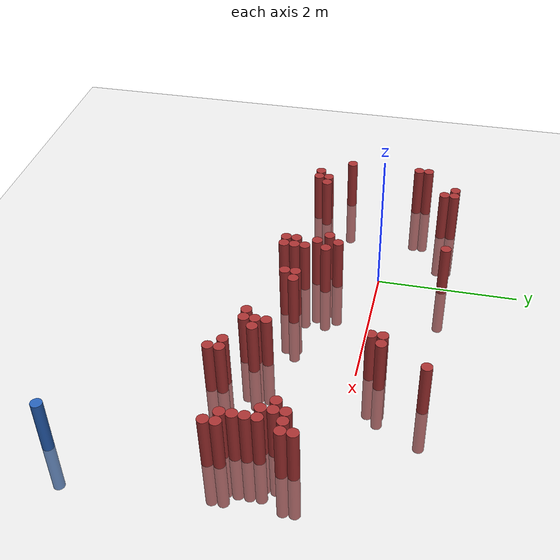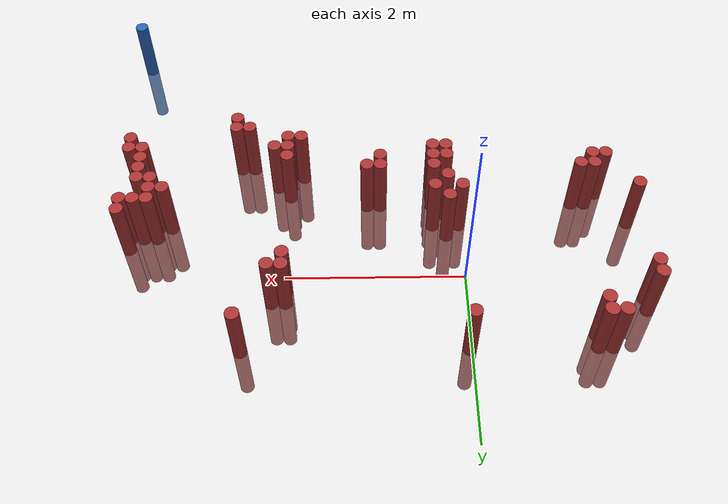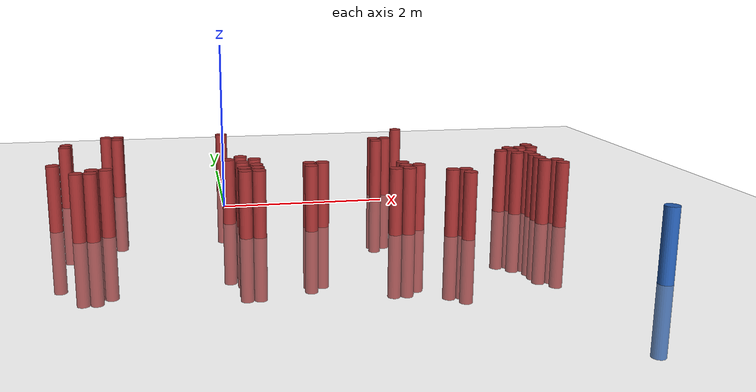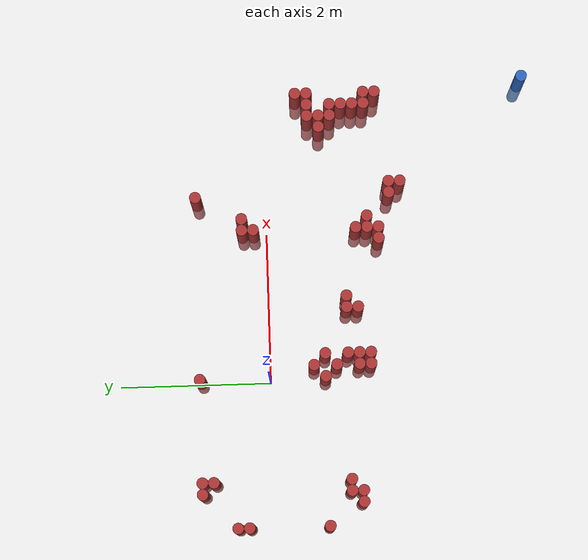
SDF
<sdf version="1.6">
 <world name="default">
  <model name="ground_plane">
   <static>1</static>
   <link name="link">
    <collision name="collision">
     <geometry><plane><normal>0 0 1</normal><size>100 100</size></plane></geometry>
     <surface><friction><ode><mu>100</mu><mu2>50</mu2></ode></friction></surface>
    </collision>
    <visual name="visual">
     <cast_shadows>0</cast_shadows>
     <geometry><plane><normal>0 0 1</normal><size>100 100</size></plane></geometry>
     <material>
      <script><uri>file://media/materials/scripts/gazebo.material</uri><name>Gazebo/Grey</name></script>
     </material>
    </visual>
   </link>
  </model>
  <model name="unit_cylinder_68">
   <static>1</static>
   <pose>3.925000 -3.425000 0.000000 0.000000 0.000000 0.000000</pose>
   <link name="link">
    <inertial>
     <mass>1</mass>
     <inertia><ixx>0.145833</ixx><ixy>0</ixy><ixz>0</ixz><iyy>0.145833</iyy><iyz>0</iyz><izz>0.125</izz></inertia>
    </inertial>
    <collision name="collision">
     <geometry><cylinder><radius>0.075000</radius><length>1.5</length></cylinder></geometry>
    </collision>
    <visual name="visual">
     <geometry><cylinder><radius>0.075000</radius><length>1.5</length></cylinder></geometry>
     <material>
      <ambient>0.152000 0.379000 0.720000 1</ambient>
      <diffuse>0.152000 0.379000 0.720000 1</diffuse>
     </material>
     <material>
      <script><name>Gazebo/Grey</name><uri>file://media/materials/scripts/gazebo.material</uri></script>
     </material>
    </visual>
   </link>
  </model>
  <model name="unit_cylinder_313">
   <static>1</static>
   <pose>-1.925000 -0.725000 0.000000 0.000000 0.000000 0.000000</pose>
   <link name="link">
    <inertial>
     <mass>1</mass>
     <inertia><ixx>0.145833</ixx><ixy>0</ixy><ixz>0</ixz><iyy>0.145833</iyy><iyz>0</iyz><izz>0.125</izz></inertia>
    </inertial>
    <collision name="collision">
     <geometry><cylinder><radius>0.075000</radius><length>1.5</length></cylinder></geometry>
    </collision>
    <visual name="visual">
     <geometry><cylinder><radius>0.075000</radius><length>1.5</length></cylinder></geometry>
     <material>
      <ambient>0.648000 0.192000 0.192000 1</ambient>
      <diffuse>0.648000 0.192000 0.192000 1</diffuse>
     </material>
     <material>
      <script><name>Gazebo/Grey</name><uri>file://media/materials/scripts/gazebo.material</uri></script>
     </material>
    </visual>
   </link>
  </model>
  <model name="unit_cylinder_314">
   <static>1</static>
   <pose>-1.925000 0.325000 0.000000 0.000000 0.000000 0.000000</pose>
   <link name="link">
    <inertial>
     <mass>1</mass>
     <inertia><ixx>0.145833</ixx><ixy>0</ixy><ixz>0</ixz><iyy>0.145833</iyy><iyz>0</iyz><izz>0.125</izz></inertia>
    </inertial>
    <collision name="collision">
     <geometry><cylinder><radius>0.075000</radius><length>1.5</length></cylinder></geometry>
    </collision>
    <visual name="visual">
     <geometry><cylinder><radius>0.075000</radius><length>1.5</length></cylinder></geometry>
     <material>
      <ambient>0.648000 0.192000 0.192000 1</ambient>
      <diffuse>0.648000 0.192000 0.192000 1</diffuse>
     </material>
     <material>
      <script><name>Gazebo/Grey</name><uri>file://media/materials/scripts/gazebo.material</uri></script>
     </material>
    </visual>
   </link>
  </model>
  <model name="unit_cylinder_315">
   <static>1</static>
   <pose>-1.925000 0.475000 0.000000 0.000000 0.000000 0.000000</pose>
   <link name="link">
    <inertial>
     <mass>1</mass>
     <inertia><ixx>0.145833</ixx><ixy>0</ixy><ixz>0</ixz><iyy>0.145833</iyy><iyz>0</iyz><izz>0.125</izz></inertia>
    </inertial>
    <collision name="collision">
     <geometry><cylinder><radius>0.075000</radius><length>1.5</length></cylinder></geometry>
    </collision>
    <visual name="visual">
     <geometry><cylinder><radius>0.075000</radius><length>1.5</length></cylinder></geometry>
     <material>
      <ambient>0.648000 0.192000 0.192000 1</ambient>
      <diffuse>0.648000 0.192000 0.192000 1</diffuse>
     </material>
     <material>
      <script><name>Gazebo/Grey</name><uri>file://media/materials/scripts/gazebo.material</uri></script>
     </material>
    </visual>
   </link>
  </model>
  <model name="unit_cylinder_320">
   <static>1</static>
   <pose>-1.625000 -1.175000 0.000000 0.000000 0.000000 0.000000</pose>
   <link name="link">
    <inertial>
     <mass>1</mass>
     <inertia><ixx>0.145833</ixx><ixy>0</ixy><ixz>0</ixz><iyy>0.145833</iyy><iyz>0</iyz><izz>0.125</izz></inertia>
    </inertial>
    <collision name="collision">
     <geometry><cylinder><radius>0.075000</radius><length>1.5</length></cylinder></geometry>
    </collision>
    <visual name="visual">
     <geometry><cylinder><radius>0.075000</radius><length>1.5</length></cylinder></geometry>
     <material>
      <ambient>0.648000 0.192000 0.192000 1</ambient>
      <diffuse>0.648000 0.192000 0.192000 1</diffuse>
     </material>
     <material>
      <script><name>Gazebo/Grey</name><uri>file://media/materials/scripts/gazebo.material</uri></script>
     </material>
    </visual>
   </link>
  </model>
  <model name="unit_cylinder_321">
   <static>1</static>
   <pose>-1.475000 -1.175000 0.000000 0.000000 0.000000 0.000000</pose>
   <link name="link">
    <inertial>
     <mass>1</mass>
     <inertia><ixx>0.145833</ixx><ixy>0</ixy><ixz>0</ixz><iyy>0.145833</iyy><iyz>0</iyz><izz>0.125</izz></inertia>
    </inertial>
    <collision name="collision">
     <geometry><cylinder><radius>0.075000</radius><length>1.5</length></cylinder></geometry>
    </collision>
    <visual name="visual">
     <geometry><cylinder><radius>0.075000</radius><length>1.5</length></cylinder></geometry>
     <material>
      <ambient>0.648000 0.192000 0.192000 1</ambient>
      <diffuse>0.648000 0.192000 0.192000 1</diffuse>
     </material>
     <material>
      <script><name>Gazebo/Grey</name><uri>file://media/materials/scripts/gazebo.material</uri></script>
     </material>
    </visual>
   </link>
  </model>
  <model name="unit_cylinder_322">
   <static>1</static>
   <pose>-1.475000 -1.025000 0.000000 0.000000 0.000000 0.000000</pose>
   <link name="link">
    <inertial>
     <mass>1</mass>
     <inertia><ixx>0.145833</ixx><ixy>0</ixy><ixz>0</ixz><iyy>0.145833</iyy><iyz>0</iyz><izz>0.125</izz></inertia>
    </inertial>
    <collision name="collision">
     <geometry><cylinder><radius>0.075000</radius><length>1.5</length></cylinder></geometry>
    </collision>
    <visual name="visual">
     <geometry><cylinder><radius>0.075000</radius><length>1.5</length></cylinder></geometry>
     <material>
      <ambient>0.648000 0.192000 0.192000 1</ambient>
      <diffuse>0.648000 0.192000 0.192000 1</diffuse>
     </material>
     <material>
      <script><name>Gazebo/Grey</name><uri>file://media/materials/scripts/gazebo.material</uri></script>
     </material>
    </visual>
   </link>
  </model>
  <model name="unit_cylinder_323">
   <static>1</static>
   <pose>-1.475000 0.925000 0.000000 0.000000 0.000000 0.000000</pose>
   <link name="link">
    <inertial>
     <mass>1</mass>
     <inertia><ixx>0.145833</ixx><ixy>0</ixy><ixz>0</ixz><iyy>0.145833</iyy><iyz>0</iyz><izz>0.125</izz></inertia>
    </inertial>
    <collision name="collision">
     <geometry><cylinder><radius>0.075000</radius><length>1.5</length></cylinder></geometry>
    </collision>
    <visual name="visual">
     <geometry><cylinder><radius>0.075000</radius><length>1.5</length></cylinder></geometry>
     <material>
      <ambient>0.648000 0.192000 0.192000 1</ambient>
      <diffuse>0.648000 0.192000 0.192000 1</diffuse>
     </material>
     <material>
      <script><name>Gazebo/Grey</name><uri>file://media/materials/scripts/gazebo.material</uri></script>
     </material>
    </visual>
   </link>
  </model>
  <model name="unit_cylinder_324">
   <static>1</static>
   <pose>-1.325000 -1.025000 0.000000 0.000000 0.000000 0.000000</pose>
   <link name="link">
    <inertial>
     <mass>1</mass>
     <inertia><ixx>0.145833</ixx><ixy>0</ixy><ixz>0</ixz><iyy>0.145833</iyy><iyz>0</iyz><izz>0.125</izz></inertia>
    </inertial>
    <collision name="collision">
     <geometry><cylinder><radius>0.075000</radius><length>1.5</length></cylinder></geometry>
    </collision>
    <visual name="visual">
     <geometry><cylinder><radius>0.075000</radius><length>1.5</length></cylinder></geometry>
     <material>
      <ambient>0.648000 0.192000 0.192000 1</ambient>
      <diffuse>0.648000 0.192000 0.192000 1</diffuse>
     </material>
     <material>
      <script><name>Gazebo/Grey</name><uri>file://media/materials/scripts/gazebo.material</uri></script>
     </material>
    </visual>
   </link>
  </model>
  <model name="unit_cylinder_325">
   <static>1</static>
   <pose>-1.325000 0.775000 0.000000 0.000000 0.000000 0.000000</pose>
   <link name="link">
    <inertial>
     <mass>1</mass>
     <inertia><ixx>0.145833</ixx><ixy>0</ixy><ixz>0</ixz><iyy>0.145833</iyy><iyz>0</iyz><izz>0.125</izz></inertia>
    </inertial>
    <collision name="collision">
     <geometry><cylinder><radius>0.075000</radius><length>1.5</length></cylinder></geometry>
    </collision>
    <visual name="visual">
     <geometry><cylinder><radius>0.075000</radius><length>1.5</length></cylinder></geometry>
     <material>
      <ambient>0.648000 0.192000 0.192000 1</ambient>
      <diffuse>0.648000 0.192000 0.192000 1</diffuse>
     </material>
     <material>
      <script><name>Gazebo/Grey</name><uri>file://media/materials/scripts/gazebo.material</uri></script>
     </material>
    </visual>
   </link>
  </model>
  <model name="unit_cylinder_326">
   <static>1</static>
   <pose>-1.325000 0.925000 0.000000 0.000000 0.000000 0.000000</pose>
   <link name="link">
    <inertial>
     <mass>1</mass>
     <inertia><ixx>0.145833</ixx><ixy>0</ixy><ixz>0</ixz><iyy>0.145833</iyy><iyz>0</iyz><izz>0.125</izz></inertia>
    </inertial>
    <collision name="collision">
     <geometry><cylinder><radius>0.075000</radius><length>1.5</length></cylinder></geometry>
    </collision>
    <visual name="visual">
     <geometry><cylinder><radius>0.075000</radius><length>1.5</length></cylinder></geometry>
     <material>
      <ambient>0.648000 0.192000 0.192000 1</ambient>
      <diffuse>0.648000 0.192000 0.192000 1</diffuse>
     </material>
     <material>
      <script><name>Gazebo/Grey</name><uri>file://media/materials/scripts/gazebo.material</uri></script>
     </material>
    </visual>
   </link>
  </model>
  <model name="unit_cylinder_362">
   <static>1</static>
   <pose>0.025000 -0.725000 0.000000 0.000000 0.000000 0.000000</pose>
   <link name="link">
    <inertial>
     <mass>1</mass>
     <inertia><ixx>0.145833</ixx><ixy>0</ixy><ixz>0</ixz><iyy>0.145833</iyy><iyz>0</iyz><izz>0.125</izz></inertia>
    </inertial>
    <collision name="collision">
     <geometry><cylinder><radius>0.075000</radius><length>1.5</length></cylinder></geometry>
    </collision>
    <visual name="visual">
     <geometry><cylinder><radius>0.075000</radius><length>1.5</length></cylinder></geometry>
     <material>
      <ambient>0.648000 0.192000 0.192000 1</ambient>
      <diffuse>0.648000 0.192000 0.192000 1</diffuse>
     </material>
     <material>
      <script><name>Gazebo/Grey</name><uri>file://media/materials/scripts/gazebo.material</uri></script>
     </material>
    </visual>
   </link>
  </model>
  <model name="unit_cylinder_363">
   <static>1</static>
   <pose>0.025000 0.925000 0.000000 0.000000 0.000000 0.000000</pose>
   <link name="link">
    <inertial>
     <mass>1</mass>
     <inertia><ixx>0.145833</ixx><ixy>0</ixy><ixz>0</ixz><iyy>0.145833</iyy><iyz>0</iyz><izz>0.125</izz></inertia>
    </inertial>
    <collision name="collision">
     <geometry><cylinder><radius>0.075000</radius><length>1.5</length></cylinder></geometry>
    </collision>
    <visual name="visual">
     <geometry><cylinder><radius>0.075000</radius><length>1.5</length></cylinder></geometry>
     <material>
      <ambient>0.648000 0.192000 0.192000 1</ambient>
      <diffuse>0.648000 0.192000 0.192000 1</diffuse>
     </material>
     <material>
      <script><name>Gazebo/Grey</name><uri>file://media/materials/scripts/gazebo.material</uri></script>
     </material>
    </visual>
   </link>
  </model>
  <model name="unit_cylinder_369">
   <static>1</static>
   <pose>0.175000 -1.325000 0.000000 0.000000 0.000000 0.000000</pose>
   <link name="link">
    <inertial>
     <mass>1</mass>
     <inertia><ixx>0.145833</ixx><ixy>0</ixy><ixz>0</ixz><iyy>0.145833</iyy><iyz>0</iyz><izz>0.125</izz></inertia>
    </inertial>
    <collision name="collision">
     <geometry><cylinder><radius>0.075000</radius><length>1.5</length></cylinder></geometry>
    </collision>
    <visual name="visual">
     <geometry><cylinder><radius>0.075000</radius><length>1.5</length></cylinder></geometry>
     <material>
      <ambient>0.648000 0.192000 0.192000 1</ambient>
      <diffuse>0.648000 0.192000 0.192000 1</diffuse>
     </material>
     <material>
      <script><name>Gazebo/Grey</name><uri>file://media/materials/scripts/gazebo.material</uri></script>
     </material>
    </visual>
   </link>
  </model>
  <model name="unit_cylinder_370">
   <static>1</static>
   <pose>0.175000 -1.175000 0.000000 0.000000 0.000000 0.000000</pose>
   <link name="link">
    <inertial>
     <mass>1</mass>
     <inertia><ixx>0.145833</ixx><ixy>0</ixy><ixz>0</ixz><iyy>0.145833</iyy><iyz>0</iyz><izz>0.125</izz></inertia>
    </inertial>
    <collision name="collision">
     <geometry><cylinder><radius>0.075000</radius><length>1.5</length></cylinder></geometry>
    </collision>
    <visual name="visual">
     <geometry><cylinder><radius>0.075000</radius><length>1.5</length></cylinder></geometry>
     <material>
      <ambient>0.648000 0.192000 0.192000 1</ambient>
      <diffuse>0.648000 0.192000 0.192000 1</diffuse>
     </material>
     <material>
      <script><name>Gazebo/Grey</name><uri>file://media/materials/scripts/gazebo.material</uri></script>
     </material>
    </visual>
   </link>
  </model>
  <model name="unit_cylinder_371">
   <static>1</static>
   <pose>0.175000 -0.875000 0.000000 0.000000 0.000000 0.000000</pose>
   <link name="link">
    <inertial>
     <mass>1</mass>
     <inertia><ixx>0.145833</ixx><ixy>0</ixy><ixz>0</ixz><iyy>0.145833</iyy><iyz>0</iyz><izz>0.125</izz></inertia>
    </inertial>
    <collision name="collision">
     <geometry><cylinder><radius>0.075000</radius><length>1.5</length></cylinder></geometry>
    </collision>
    <visual name="visual">
     <geometry><cylinder><radius>0.075000</radius><length>1.5</length></cylinder></geometry>
     <material>
      <ambient>0.648000 0.192000 0.192000 1</ambient>
      <diffuse>0.648000 0.192000 0.192000 1</diffuse>
     </material>
     <material>
      <script><name>Gazebo/Grey</name><uri>file://media/materials/scripts/gazebo.material</uri></script>
     </material>
    </visual>
   </link>
  </model>
  <model name="unit_cylinder_372">
   <static>1</static>
   <pose>0.175000 -0.575000 0.000000 0.000000 0.000000 0.000000</pose>
   <link name="link">
    <inertial>
     <mass>1</mass>
     <inertia><ixx>0.145833</ixx><ixy>0</ixy><ixz>0</ixz><iyy>0.145833</iyy><iyz>0</iyz><izz>0.125</izz></inertia>
    </inertial>
    <collision name="collision">
     <geometry><cylinder><radius>0.075000</radius><length>1.5</length></cylinder></geometry>
    </collision>
    <visual name="visual">
     <geometry><cylinder><radius>0.075000</radius><length>1.5</length></cylinder></geometry>
     <material>
      <ambient>0.648000 0.192000 0.192000 1</ambient>
      <diffuse>0.648000 0.192000 0.192000 1</diffuse>
     </material>
     <material>
      <script><name>Gazebo/Grey</name><uri>file://media/materials/scripts/gazebo.material</uri></script>
     </material>
    </visual>
   </link>
  </model>
  <model name="unit_cylinder_375">
   <static>1</static>
   <pose>0.325000 -1.325000 0.000000 0.000000 0.000000 0.000000</pose>
   <link name="link">
    <inertial>
     <mass>1</mass>
     <inertia><ixx>0.145833</ixx><ixy>0</ixy><ixz>0</ixz><iyy>0.145833</iyy><iyz>0</iyz><izz>0.125</izz></inertia>
    </inertial>
    <collision name="collision">
     <geometry><cylinder><radius>0.075000</radius><length>1.5</length></cylinder></geometry>
    </collision>
    <visual name="visual">
     <geometry><cylinder><radius>0.075000</radius><length>1.5</length></cylinder></geometry>
     <material>
      <ambient>0.648000 0.192000 0.192000 1</ambient>
      <diffuse>0.648000 0.192000 0.192000 1</diffuse>
     </material>
     <material>
      <script><name>Gazebo/Grey</name><uri>file://media/materials/scripts/gazebo.material</uri></script>
     </material>
    </visual>
   </link>
  </model>
  <model name="unit_cylinder_376">
   <static>1</static>
   <pose>0.325000 -1.175000 0.000000 0.000000 0.000000 0.000000</pose>
   <link name="link">
    <inertial>
     <mass>1</mass>
     <inertia><ixx>0.145833</ixx><ixy>0</ixy><ixz>0</ixz><iyy>0.145833</iyy><iyz>0</iyz><izz>0.125</izz></inertia>
    </inertial>
    <collision name="collision">
     <geometry><cylinder><radius>0.075000</radius><length>1.5</length></cylinder></geometry>
    </collision>
    <visual name="visual">
     <geometry><cylinder><radius>0.075000</radius><length>1.5</length></cylinder></geometry>
     <material>
      <ambient>0.648000 0.192000 0.192000 1</ambient>
      <diffuse>0.648000 0.192000 0.192000 1</diffuse>
     </material>
     <material>
      <script><name>Gazebo/Grey</name><uri>file://media/materials/scripts/gazebo.material</uri></script>
     </material>
    </visual>
   </link>
  </model>
  <model name="unit_cylinder_377">
   <static>1</static>
   <pose>0.325000 -1.025000 0.000000 0.000000 0.000000 0.000000</pose>
   <link name="link">
    <inertial>
     <mass>1</mass>
     <inertia><ixx>0.145833</ixx><ixy>0</ixy><ixz>0</ixz><iyy>0.145833</iyy><iyz>0</iyz><izz>0.125</izz></inertia>
    </inertial>
    <collision name="collision">
     <geometry><cylinder><radius>0.075000</radius><length>1.5</length></cylinder></geometry>
    </collision>
    <visual name="visual">
     <geometry><cylinder><radius>0.075000</radius><length>1.5</length></cylinder></geometry>
     <material>
      <ambient>0.648000 0.192000 0.192000 1</ambient>
      <diffuse>0.648000 0.192000 0.192000 1</diffuse>
     </material>
     <material>
      <script><name>Gazebo/Grey</name><uri>file://media/materials/scripts/gazebo.material</uri></script>
     </material>
    </visual>
   </link>
  </model>
  <model name="unit_cylinder_378">
   <static>1</static>
   <pose>0.325000 -0.725000 0.000000 0.000000 0.000000 0.000000</pose>
   <link name="link">
    <inertial>
     <mass>1</mass>
     <inertia><ixx>0.145833</ixx><ixy>0</ixy><ixz>0</ixz><iyy>0.145833</iyy><iyz>0</iyz><izz>0.125</izz></inertia>
    </inertial>
    <collision name="collision">
     <geometry><cylinder><radius>0.075000</radius><length>1.5</length></cylinder></geometry>
    </collision>
    <visual name="visual">
     <geometry><cylinder><radius>0.075000</radius><length>1.5</length></cylinder></geometry>
     <material>
      <ambient>0.648000 0.192000 0.192000 1</ambient>
      <diffuse>0.648000 0.192000 0.192000 1</diffuse>
     </material>
     <material>
      <script><name>Gazebo/Grey</name><uri>file://media/materials/scripts/gazebo.material</uri></script>
     </material>
    </visual>
   </link>
  </model>
  <model name="unit_cylinder_392">
   <static>1</static>
   <pose>0.925000 -1.175000 0.000000 0.000000 0.000000 0.000000</pose>
   <link name="link">
    <inertial>
     <mass>1</mass>
     <inertia><ixx>0.145833</ixx><ixy>0</ixy><ixz>0</ixz><iyy>0.145833</iyy><iyz>0</iyz><izz>0.125</izz></inertia>
    </inertial>
    <collision name="collision">
     <geometry><cylinder><radius>0.075000</radius><length>1.5</length></cylinder></geometry>
    </collision>
    <visual name="visual">
     <geometry><cylinder><radius>0.075000</radius><length>1.5</length></cylinder></geometry>
     <material>
      <ambient>0.648000 0.192000 0.192000 1</ambient>
      <diffuse>0.648000 0.192000 0.192000 1</diffuse>
     </material>
     <material>
      <script><name>Gazebo/Grey</name><uri>file://media/materials/scripts/gazebo.material</uri></script>
     </material>
    </visual>
   </link>
  </model>
  <model name="unit_cylinder_393">
   <static>1</static>
   <pose>0.925000 -1.025000 0.000000 0.000000 0.000000 0.000000</pose>
   <link name="link">
    <inertial>
     <mass>1</mass>
     <inertia><ixx>0.145833</ixx><ixy>0</ixy><ixz>0</ixz><iyy>0.145833</iyy><iyz>0</iyz><izz>0.125</izz></inertia>
    </inertial>
    <collision name="collision">
     <geometry><cylinder><radius>0.075000</radius><length>1.5</length></cylinder></geometry>
    </collision>
    <visual name="visual">
     <geometry><cylinder><radius>0.075000</radius><length>1.5</length></cylinder></geometry>
     <material>
      <ambient>0.648000 0.192000 0.192000 1</ambient>
      <diffuse>0.648000 0.192000 0.192000 1</diffuse>
     </material>
     <material>
      <script><name>Gazebo/Grey</name><uri>file://media/materials/scripts/gazebo.material</uri></script>
     </material>
    </visual>
   </link>
  </model>
  <model name="unit_cylinder_397">
   <static>1</static>
   <pose>1.075000 -1.025000 0.000000 0.000000 0.000000 0.000000</pose>
   <link name="link">
    <inertial>
     <mass>1</mass>
     <inertia><ixx>0.145833</ixx><ixy>0</ixy><ixz>0</ixz><iyy>0.145833</iyy><iyz>0</iyz><izz>0.125</izz></inertia>
    </inertial>
    <collision name="collision">
     <geometry><cylinder><radius>0.075000</radius><length>1.5</length></cylinder></geometry>
    </collision>
    <visual name="visual">
     <geometry><cylinder><radius>0.075000</radius><length>1.5</length></cylinder></geometry>
     <material>
      <ambient>0.648000 0.192000 0.192000 1</ambient>
      <diffuse>0.648000 0.192000 0.192000 1</diffuse>
     </material>
     <material>
      <script><name>Gazebo/Grey</name><uri>file://media/materials/scripts/gazebo.material</uri></script>
     </material>
    </visual>
   </link>
  </model>
  <model name="unit_cylinder_403">
   <static>1</static>
   <pose>1.825000 -1.475000 0.000000 0.000000 0.000000 0.000000</pose>
   <link name="link">
    <inertial>
     <mass>1</mass>
     <inertia><ixx>0.145833</ixx><ixy>0</ixy><ixz>0</ixz><iyy>0.145833</iyy><iyz>0</iyz><izz>0.125</izz></inertia>
    </inertial>
    <collision name="collision">
     <geometry><cylinder><radius>0.075000</radius><length>1.5</length></cylinder></geometry>
    </collision>
    <visual name="visual">
     <geometry><cylinder><radius>0.075000</radius><length>1.5</length></cylinder></geometry>
     <material>
      <ambient>0.648000 0.192000 0.192000 1</ambient>
      <diffuse>0.648000 0.192000 0.192000 1</diffuse>
     </material>
     <material>
      <script><name>Gazebo/Grey</name><uri>file://media/materials/scripts/gazebo.material</uri></script>
     </material>
    </visual>
   </link>
  </model>
  <model name="unit_cylinder_404">
   <static>1</static>
   <pose>1.975000 -1.475000 0.000000 0.000000 0.000000 0.000000</pose>
   <link name="link">
    <inertial>
     <mass>1</mass>
     <inertia><ixx>0.145833</ixx><ixy>0</ixy><ixz>0</ixz><iyy>0.145833</iyy><iyz>0</iyz><izz>0.125</izz></inertia>
    </inertial>
    <collision name="collision">
     <geometry><cylinder><radius>0.075000</radius><length>1.5</length></cylinder></geometry>
    </collision>
    <visual name="visual">
     <geometry><cylinder><radius>0.075000</radius><length>1.5</length></cylinder></geometry>
     <material>
      <ambient>0.648000 0.192000 0.192000 1</ambient>
      <diffuse>0.648000 0.192000 0.192000 1</diffuse>
     </material>
     <material>
      <script><name>Gazebo/Grey</name><uri>file://media/materials/scripts/gazebo.material</uri></script>
     </material>
    </visual>
   </link>
  </model>
  <model name="unit_cylinder_405">
   <static>1</static>
   <pose>1.975000 -1.325000 0.000000 0.000000 0.000000 0.000000</pose>
   <link name="link">
    <inertial>
     <mass>1</mass>
     <inertia><ixx>0.145833</ixx><ixy>0</ixy><ixz>0</ixz><iyy>0.145833</iyy><iyz>0</iyz><izz>0.125</izz></inertia>
    </inertial>
    <collision name="collision">
     <geometry><cylinder><radius>0.075000</radius><length>1.5</length></cylinder></geometry>
    </collision>
    <visual name="visual">
     <geometry><cylinder><radius>0.075000</radius><length>1.5</length></cylinder></geometry>
     <material>
      <ambient>0.648000 0.192000 0.192000 1</ambient>
      <diffuse>0.648000 0.192000 0.192000 1</diffuse>
     </material>
     <material>
      <script><name>Gazebo/Grey</name><uri>file://media/materials/scripts/gazebo.material</uri></script>
     </material>
    </visual>
   </link>
  </model>
  <model name="unit_cylinder_406">
   <static>1</static>
   <pose>1.975000 -1.175000 0.000000 0.000000 0.000000 0.000000</pose>
   <link name="link">
    <inertial>
     <mass>1</mass>
     <inertia><ixx>0.145833</ixx><ixy>0</ixy><ixz>0</ixz><iyy>0.145833</iyy><iyz>0</iyz><izz>0.125</izz></inertia>
    </inertial>
    <collision name="collision">
     <geometry><cylinder><radius>0.075000</radius><length>1.5</length></cylinder></geometry>
    </collision>
    <visual name="visual">
     <geometry><cylinder><radius>0.075000</radius><length>1.5</length></cylinder></geometry>
     <material>
      <ambient>0.648000 0.192000 0.192000 1</ambient>
      <diffuse>0.648000 0.192000 0.192000 1</diffuse>
     </material>
     <material>
      <script><name>Gazebo/Grey</name><uri>file://media/materials/scripts/gazebo.material</uri></script>
     </material>
    </visual>
   </link>
  </model>
  <model name="unit_cylinder_407">
   <static>1</static>
   <pose>1.975000 0.175000 0.000000 0.000000 0.000000 0.000000</pose>
   <link name="link">
    <inertial>
     <mass>1</mass>
     <inertia><ixx>0.145833</ixx><ixy>0</ixy><ixz>0</ixz><iyy>0.145833</iyy><iyz>0</iyz><izz>0.125</izz></inertia>
    </inertial>
    <collision name="collision">
     <geometry><cylinder><radius>0.075000</radius><length>1.5</length></cylinder></geometry>
    </collision>
    <visual name="visual">
     <geometry><cylinder><radius>0.075000</radius><length>1.5</length></cylinder></geometry>
     <material>
      <ambient>0.648000 0.192000 0.192000 1</ambient>
      <diffuse>0.648000 0.192000 0.192000 1</diffuse>
     </material>
     <material>
      <script><name>Gazebo/Grey</name><uri>file://media/materials/scripts/gazebo.material</uri></script>
     </material>
    </visual>
   </link>
  </model>
  <model name="unit_cylinder_408">
   <static>1</static>
   <pose>1.975000 0.325000 0.000000 0.000000 0.000000 0.000000</pose>
   <link name="link">
    <inertial>
     <mass>1</mass>
     <inertia><ixx>0.145833</ixx><ixy>0</ixy><ixz>0</ixz><iyy>0.145833</iyy><iyz>0</iyz><izz>0.125</izz></inertia>
    </inertial>
    <collision name="collision">
     <geometry><cylinder><radius>0.075000</radius><length>1.5</length></cylinder></geometry>
    </collision>
    <visual name="visual">
     <geometry><cylinder><radius>0.075000</radius><length>1.5</length></cylinder></geometry>
     <material>
      <ambient>0.648000 0.192000 0.192000 1</ambient>
      <diffuse>0.648000 0.192000 0.192000 1</diffuse>
     </material>
     <material>
      <script><name>Gazebo/Grey</name><uri>file://media/materials/scripts/gazebo.material</uri></script>
     </material>
    </visual>
   </link>
  </model>
  <model name="unit_cylinder_409">
   <static>1</static>
   <pose>2.125000 -1.325000 0.000000 0.000000 0.000000 0.000000</pose>
   <link name="link">
    <inertial>
     <mass>1</mass>
     <inertia><ixx>0.145833</ixx><ixy>0</ixy><ixz>0</ixz><iyy>0.145833</iyy><iyz>0</iyz><izz>0.125</izz></inertia>
    </inertial>
    <collision name="collision">
     <geometry><cylinder><radius>0.075000</radius><length>1.5</length></cylinder></geometry>
    </collision>
    <visual name="visual">
     <geometry><cylinder><radius>0.075000</radius><length>1.5</length></cylinder></geometry>
     <material>
      <ambient>0.648000 0.192000 0.192000 1</ambient>
      <diffuse>0.648000 0.192000 0.192000 1</diffuse>
     </material>
     <material>
      <script><name>Gazebo/Grey</name><uri>file://media/materials/scripts/gazebo.material</uri></script>
     </material>
    </visual>
   </link>
  </model>
  <model name="unit_cylinder_410">
   <static>1</static>
   <pose>2.125000 0.325000 0.000000 0.000000 0.000000 0.000000</pose>
   <link name="link">
    <inertial>
     <mass>1</mass>
     <inertia><ixx>0.145833</ixx><ixy>0</ixy><ixz>0</ixz><iyy>0.145833</iyy><iyz>0</iyz><izz>0.125</izz></inertia>
    </inertial>
    <collision name="collision">
     <geometry><cylinder><radius>0.075000</radius><length>1.5</length></cylinder></geometry>
    </collision>
    <visual name="visual">
     <geometry><cylinder><radius>0.075000</radius><length>1.5</length></cylinder></geometry>
     <material>
      <ambient>0.648000 0.192000 0.192000 1</ambient>
      <diffuse>0.648000 0.192000 0.192000 1</diffuse>
     </material>
     <material>
      <script><name>Gazebo/Grey</name><uri>file://media/materials/scripts/gazebo.material</uri></script>
     </material>
    </visual>
   </link>
  </model>
  <model name="unit_cylinder_412">
   <static>1</static>
   <pose>2.425000 -1.625000 0.000000 0.000000 0.000000 0.000000</pose>
   <link name="link">
    <inertial>
     <mass>1</mass>
     <inertia><ixx>0.145833</ixx><ixy>0</ixy><ixz>0</ixz><iyy>0.145833</iyy><iyz>0</iyz><izz>0.125</izz></inertia>
    </inertial>
    <collision name="collision">
     <geometry><cylinder><radius>0.075000</radius><length>1.5</length></cylinder></geometry>
    </collision>
    <visual name="visual">
     <geometry><cylinder><radius>0.075000</radius><length>1.5</length></cylinder></geometry>
     <material>
      <ambient>0.648000 0.192000 0.192000 1</ambient>
      <diffuse>0.648000 0.192000 0.192000 1</diffuse>
     </material>
     <material>
      <script><name>Gazebo/Grey</name><uri>file://media/materials/scripts/gazebo.material</uri></script>
     </material>
    </visual>
   </link>
  </model>
  <model name="unit_cylinder_413">
   <static>1</static>
   <pose>2.425000 0.925000 0.000000 0.000000 0.000000 0.000000</pose>
   <link name="link">
    <inertial>
     <mass>1</mass>
     <inertia><ixx>0.145833</ixx><ixy>0</ixy><ixz>0</ixz><iyy>0.145833</iyy><iyz>0</iyz><izz>0.125</izz></inertia>
    </inertial>
    <collision name="collision">
     <geometry><cylinder><radius>0.075000</radius><length>1.5</length></cylinder></geometry>
    </collision>
    <visual name="visual">
     <geometry><cylinder><radius>0.075000</radius><length>1.5</length></cylinder></geometry>
     <material>
      <ambient>0.648000 0.192000 0.192000 1</ambient>
      <diffuse>0.648000 0.192000 0.192000 1</diffuse>
     </material>
     <material>
      <script><name>Gazebo/Grey</name><uri>file://media/materials/scripts/gazebo.material</uri></script>
     </material>
    </visual>
   </link>
  </model>
  <model name="unit_cylinder_415">
   <static>1</static>
   <pose>2.575000 -1.775000 0.000000 0.000000 0.000000 0.000000</pose>
   <link name="link">
    <inertial>
     <mass>1</mass>
     <inertia><ixx>0.145833</ixx><ixy>0</ixy><ixz>0</ixz><iyy>0.145833</iyy><iyz>0</iyz><izz>0.125</izz></inertia>
    </inertial>
    <collision name="collision">
     <geometry><cylinder><radius>0.075000</radius><length>1.5</length></cylinder></geometry>
    </collision>
    <visual name="visual">
     <geometry><cylinder><radius>0.075000</radius><length>1.5</length></cylinder></geometry>
     <material>
      <ambient>0.648000 0.192000 0.192000 1</ambient>
      <diffuse>0.648000 0.192000 0.192000 1</diffuse>
     </material>
     <material>
      <script><name>Gazebo/Grey</name><uri>file://media/materials/scripts/gazebo.material</uri></script>
     </material>
    </visual>
   </link>
  </model>
  <model name="unit_cylinder_416">
   <static>1</static>
   <pose>2.575000 -1.625000 0.000000 0.000000 0.000000 0.000000</pose>
   <link name="link">
    <inertial>
     <mass>1</mass>
     <inertia><ixx>0.145833</ixx><ixy>0</ixy><ixz>0</ixz><iyy>0.145833</iyy><iyz>0</iyz><izz>0.125</izz></inertia>
    </inertial>
    <collision name="collision">
     <geometry><cylinder><radius>0.075000</radius><length>1.5</length></cylinder></geometry>
    </collision>
    <visual name="visual">
     <geometry><cylinder><radius>0.075000</radius><length>1.5</length></cylinder></geometry>
     <material>
      <ambient>0.648000 0.192000 0.192000 1</ambient>
      <diffuse>0.648000 0.192000 0.192000 1</diffuse>
     </material>
     <material>
      <script><name>Gazebo/Grey</name><uri>file://media/materials/scripts/gazebo.material</uri></script>
     </material>
    </visual>
   </link>
  </model>
  <model name="unit_cylinder_422">
   <static>1</static>
   <pose>3.325000 -0.725000 0.000000 0.000000 0.000000 0.000000</pose>
   <link name="link">
    <inertial>
     <mass>1</mass>
     <inertia><ixx>0.145833</ixx><ixy>0</ixy><ixz>0</ixz><iyy>0.145833</iyy><iyz>0</iyz><izz>0.125</izz></inertia>
    </inertial>
    <collision name="collision">
     <geometry><cylinder><radius>0.075000</radius><length>1.5</length></cylinder></geometry>
    </collision>
    <visual name="visual">
     <geometry><cylinder><radius>0.075000</radius><length>1.5</length></cylinder></geometry>
     <material>
      <ambient>0.648000 0.192000 0.192000 1</ambient>
      <diffuse>0.648000 0.192000 0.192000 1</diffuse>
     </material>
     <material>
      <script><name>Gazebo/Grey</name><uri>file://media/materials/scripts/gazebo.material</uri></script>
     </material>
    </visual>
   </link>
  </model>
  <model name="unit_cylinder_424">
   <static>1</static>
   <pose>3.475000 -0.875000 0.000000 0.000000 0.000000 0.000000</pose>
   <link name="link">
    <inertial>
     <mass>1</mass>
     <inertia><ixx>0.145833</ixx><ixy>0</ixy><ixz>0</ixz><iyy>0.145833</iyy><iyz>0</iyz><izz>0.125</izz></inertia>
    </inertial>
    <collision name="collision">
     <geometry><cylinder><radius>0.075000</radius><length>1.5</length></cylinder></geometry>
    </collision>
    <visual name="visual">
     <geometry><cylinder><radius>0.075000</radius><length>1.5</length></cylinder></geometry>
     <material>
      <ambient>0.648000 0.192000 0.192000 1</ambient>
      <diffuse>0.648000 0.192000 0.192000 1</diffuse>
     </material>
     <material>
      <script><name>Gazebo/Grey</name><uri>file://media/materials/scripts/gazebo.material</uri></script>
     </material>
    </visual>
   </link>
  </model>
  <model name="unit_cylinder_425">
   <static>1</static>
   <pose>3.475000 -0.725000 0.000000 0.000000 0.000000 0.000000</pose>
   <link name="link">
    <inertial>
     <mass>1</mass>
     <inertia><ixx>0.145833</ixx><ixy>0</ixy><ixz>0</ixz><iyy>0.145833</iyy><iyz>0</iyz><izz>0.125</izz></inertia>
    </inertial>
    <collision name="collision">
     <geometry><cylinder><radius>0.075000</radius><length>1.5</length></cylinder></geometry>
    </collision>
    <visual name="visual">
     <geometry><cylinder><radius>0.075000</radius><length>1.5</length></cylinder></geometry>
     <material>
      <ambient>0.648000 0.192000 0.192000 1</ambient>
      <diffuse>0.648000 0.192000 0.192000 1</diffuse>
     </material>
     <material>
      <script><name>Gazebo/Grey</name><uri>file://media/materials/scripts/gazebo.material</uri></script>
     </material>
    </visual>
   </link>
  </model>
  <model name="unit_cylinder_426">
   <static>1</static>
   <pose>3.475000 -0.575000 0.000000 0.000000 0.000000 0.000000</pose>
   <link name="link">
    <inertial>
     <mass>1</mass>
     <inertia><ixx>0.145833</ixx><ixy>0</ixy><ixz>0</ixz><iyy>0.145833</iyy><iyz>0</iyz><izz>0.125</izz></inertia>
    </inertial>
    <collision name="collision">
     <geometry><cylinder><radius>0.075000</radius><length>1.5</length></cylinder></geometry>
    </collision>
    <visual name="visual">
     <geometry><cylinder><radius>0.075000</radius><length>1.5</length></cylinder></geometry>
     <material>
      <ambient>0.648000 0.192000 0.192000 1</ambient>
      <diffuse>0.648000 0.192000 0.192000 1</diffuse>
     </material>
     <material>
      <script><name>Gazebo/Grey</name><uri>file://media/materials/scripts/gazebo.material</uri></script>
     </material>
    </visual>
   </link>
  </model>
  <model name="unit_cylinder_427">
   <static>1</static>
   <pose>3.625000 -1.325000 0.000000 0.000000 0.000000 0.000000</pose>
   <link name="link">
    <inertial>
     <mass>1</mass>
     <inertia><ixx>0.145833</ixx><ixy>0</ixy><ixz>0</ixz><iyy>0.145833</iyy><iyz>0</iyz><izz>0.125</izz></inertia>
    </inertial>
    <collision name="collision">
     <geometry><cylinder><radius>0.075000</radius><length>1.5</length></cylinder></geometry>
    </collision>
    <visual name="visual">
     <geometry><cylinder><radius>0.075000</radius><length>1.5</length></cylinder></geometry>
     <material>
      <ambient>0.648000 0.192000 0.192000 1</ambient>
      <diffuse>0.648000 0.192000 0.192000 1</diffuse>
     </material>
     <material>
      <script><name>Gazebo/Grey</name><uri>file://media/materials/scripts/gazebo.material</uri></script>
     </material>
    </visual>
   </link>
  </model>
  <model name="unit_cylinder_428">
   <static>1</static>
   <pose>3.625000 -1.175000 0.000000 0.000000 0.000000 0.000000</pose>
   <link name="link">
    <inertial>
     <mass>1</mass>
     <inertia><ixx>0.145833</ixx><ixy>0</ixy><ixz>0</ixz><iyy>0.145833</iyy><iyz>0</iyz><izz>0.125</izz></inertia>
    </inertial>
    <collision name="collision">
     <geometry><cylinder><radius>0.075000</radius><length>1.5</length></cylinder></geometry>
    </collision>
    <visual name="visual">
     <geometry><cylinder><radius>0.075000</radius><length>1.5</length></cylinder></geometry>
     <material>
      <ambient>0.648000 0.192000 0.192000 1</ambient>
      <diffuse>0.648000 0.192000 0.192000 1</diffuse>
     </material>
     <material>
      <script><name>Gazebo/Grey</name><uri>file://media/materials/scripts/gazebo.material</uri></script>
     </material>
    </visual>
   </link>
  </model>
  <model name="unit_cylinder_429">
   <static>1</static>
   <pose>3.625000 -1.025000 0.000000 0.000000 0.000000 0.000000</pose>
   <link name="link">
    <inertial>
     <mass>1</mass>
     <inertia><ixx>0.145833</ixx><ixy>0</ixy><ixz>0</ixz><iyy>0.145833</iyy><iyz>0</iyz><izz>0.125</izz></inertia>
    </inertial>
    <collision name="collision">
     <geometry><cylinder><radius>0.075000</radius><length>1.5</length></cylinder></geometry>
    </collision>
    <visual name="visual">
     <geometry><cylinder><radius>0.075000</radius><length>1.5</length></cylinder></geometry>
     <material>
      <ambient>0.648000 0.192000 0.192000 1</ambient>
      <diffuse>0.648000 0.192000 0.192000 1</diffuse>
     </material>
     <material>
      <script><name>Gazebo/Grey</name><uri>file://media/materials/scripts/gazebo.material</uri></script>
     </material>
    </visual>
   </link>
  </model>
  <model name="unit_cylinder_430">
   <static>1</static>
   <pose>3.625000 -0.875000 0.000000 0.000000 0.000000 0.000000</pose>
   <link name="link">
    <inertial>
     <mass>1</mass>
     <inertia><ixx>0.145833</ixx><ixy>0</ixy><ixz>0</ixz><iyy>0.145833</iyy><iyz>0</iyz><izz>0.125</izz></inertia>
    </inertial>
    <collision name="collision">
     <geometry><cylinder><radius>0.075000</radius><length>1.5</length></cylinder></geometry>
    </collision>
    <visual name="visual">
     <geometry><cylinder><radius>0.075000</radius><length>1.5</length></cylinder></geometry>
     <material>
      <ambient>0.648000 0.192000 0.192000 1</ambient>
      <diffuse>0.648000 0.192000 0.192000 1</diffuse>
     </material>
     <material>
      <script><name>Gazebo/Grey</name><uri>file://media/materials/scripts/gazebo.material</uri></script>
     </material>
    </visual>
   </link>
  </model>
  <model name="unit_cylinder_431">
   <static>1</static>
   <pose>3.625000 -0.575000 0.000000 0.000000 0.000000 0.000000</pose>
   <link name="link">
    <inertial>
     <mass>1</mass>
     <inertia><ixx>0.145833</ixx><ixy>0</ixy><ixz>0</ixz><iyy>0.145833</iyy><iyz>0</iyz><izz>0.125</izz></inertia>
    </inertial>
    <collision name="collision">
     <geometry><cylinder><radius>0.075000</radius><length>1.5</length></cylinder></geometry>
    </collision>
    <visual name="visual">
     <geometry><cylinder><radius>0.075000</radius><length>1.5</length></cylinder></geometry>
     <material>
      <ambient>0.648000 0.192000 0.192000 1</ambient>
      <diffuse>0.648000 0.192000 0.192000 1</diffuse>
     </material>
     <material>
      <script><name>Gazebo/Grey</name><uri>file://media/materials/scripts/gazebo.material</uri></script>
     </material>
    </visual>
   </link>
  </model>
  <model name="unit_cylinder_432">
   <static>1</static>
   <pose>3.775000 -1.475000 0.000000 0.000000 0.000000 0.000000</pose>
   <link name="link">
    <inertial>
     <mass>1</mass>
     <inertia><ixx>0.145833</ixx><ixy>0</ixy><ixz>0</ixz><iyy>0.145833</iyy><iyz>0</iyz><izz>0.125</izz></inertia>
    </inertial>
    <collision name="collision">
     <geometry><cylinder><radius>0.075000</radius><length>1.5</length></cylinder></geometry>
    </collision>
    <visual name="visual">
     <geometry><cylinder><radius>0.075000</radius><length>1.5</length></cylinder></geometry>
     <material>
      <ambient>0.648000 0.192000 0.192000 1</ambient>
      <diffuse>0.648000 0.192000 0.192000 1</diffuse>
     </material>
     <material>
      <script><name>Gazebo/Grey</name><uri>file://media/materials/scripts/gazebo.material</uri></script>
     </material>
    </visual>
   </link>
  </model>
  <model name="unit_cylinder_433">
   <static>1</static>
   <pose>3.775000 -1.325000 0.000000 0.000000 0.000000 0.000000</pose>
   <link name="link">
    <inertial>
     <mass>1</mass>
     <inertia><ixx>0.145833</ixx><ixy>0</ixy><ixz>0</ixz><iyy>0.145833</iyy><iyz>0</iyz><izz>0.125</izz></inertia>
    </inertial>
    <collision name="collision">
     <geometry><cylinder><radius>0.075000</radius><length>1.5</length></cylinder></geometry>
    </collision>
    <visual name="visual">
     <geometry><cylinder><radius>0.075000</radius><length>1.5</length></cylinder></geometry>
     <material>
      <ambient>0.648000 0.192000 0.192000 1</ambient>
      <diffuse>0.648000 0.192000 0.192000 1</diffuse>
     </material>
     <material>
      <script><name>Gazebo/Grey</name><uri>file://media/materials/scripts/gazebo.material</uri></script>
     </material>
    </visual>
   </link>
  </model>
  <model name="unit_cylinder_434">
   <static>1</static>
   <pose>3.775000 -0.575000 0.000000 0.000000 0.000000 0.000000</pose>
   <link name="link">
    <inertial>
     <mass>1</mass>
     <inertia><ixx>0.145833</ixx><ixy>0</ixy><ixz>0</ixz><iyy>0.145833</iyy><iyz>0</iyz><izz>0.125</izz></inertia>
    </inertial>
    <collision name="collision">
     <geometry><cylinder><radius>0.075000</radius><length>1.5</length></cylinder></geometry>
    </collision>
    <visual name="visual">
     <geometry><cylinder><radius>0.075000</radius><length>1.5</length></cylinder></geometry>
     <material>
      <ambient>0.648000 0.192000 0.192000 1</ambient>
      <diffuse>0.648000 0.192000 0.192000 1</diffuse>
     </material>
     <material>
      <script><name>Gazebo/Grey</name><uri>file://media/materials/scripts/gazebo.material</uri></script>
     </material>
    </visual>
   </link>
  </model>
  <model name="unit_cylinder_435">
   <static>1</static>
   <pose>3.775000 -0.425000 0.000000 0.000000 0.000000 0.000000</pose>
   <link name="link">
    <inertial>
     <mass>1</mass>
     <inertia><ixx>0.145833</ixx><ixy>0</ixy><ixz>0</ixz><iyy>0.145833</iyy><iyz>0</iyz><izz>0.125</izz></inertia>
    </inertial>
    <collision name="collision">
     <geometry><cylinder><radius>0.075000</radius><length>1.5</length></cylinder></geometry>
    </collision>
    <visual name="visual">
     <geometry><cylinder><radius>0.075000</radius><length>1.5</length></cylinder></geometry>
     <material>
      <ambient>0.648000 0.192000 0.192000 1</ambient>
      <diffuse>0.648000 0.192000 0.192000 1</diffuse>
     </material>
     <material>
      <script><name>Gazebo/Grey</name><uri>file://media/materials/scripts/gazebo.material</uri></script>
     </material>
    </visual>
   </link>
  </model>
 </world>
</sdf>
